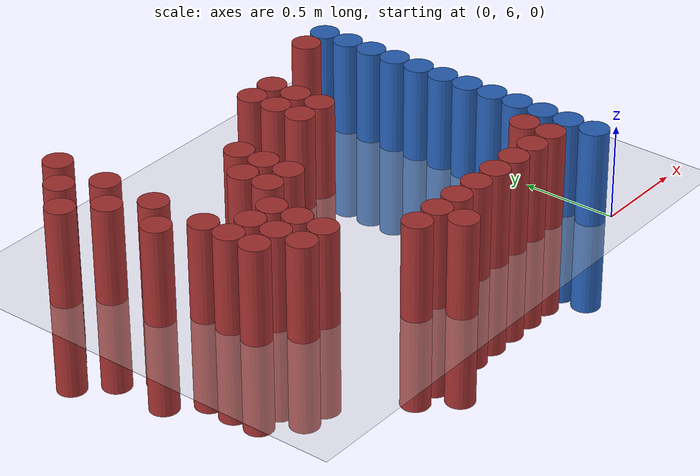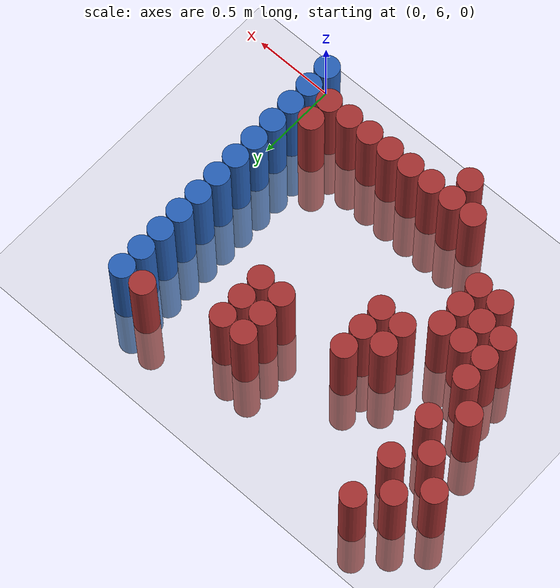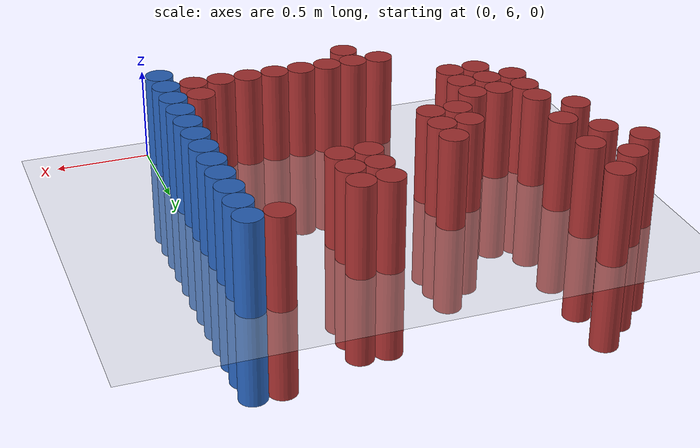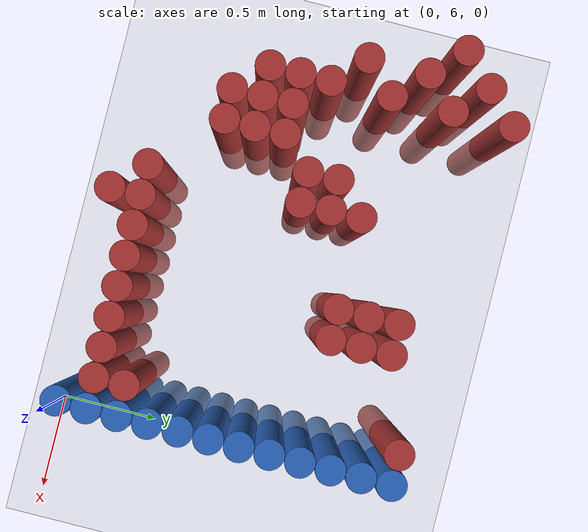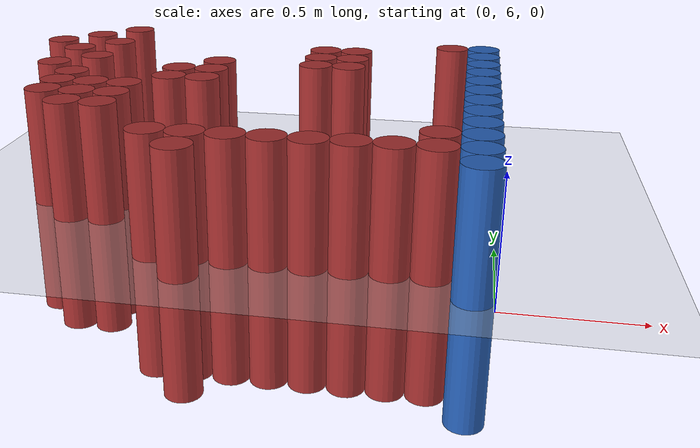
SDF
<sdf version="1.6">
 <world name="default">
  <model name="ground_plane">
   <static>1</static>
   <link name="link">
    <collision name="collision">
     <geometry><plane><normal>0 0 1</normal><size>100 100</size></plane></geometry>
     <surface><friction><ode><mu>100</mu><mu2>50</mu2></ode></friction></surface>
    </collision>
    <visual name="visual">
     <cast_shadows>0</cast_shadows>
     <geometry><plane><normal>0 0 1</normal><size>100 100</size></plane></geometry>
     <material>
      <script><uri>file://media/materials/scripts/gazebo.material</uri><name>Gazebo/Grey</name></script>
     </material>
    </visual>
   </link>
  </model>
  <model name="unit_cylinder_176">
   <static>1</static>
   <pose>-2.175000 7.575000 0.000000 0.000000 0.000000 0.000000</pose>
   <link name="link">
    <inertial>
     <mass>1</mass>
     <inertia><ixx>0.145833</ixx><ixy>0</ixy><ixz>0</ixz><iyy>0.145833</iyy><iyz>0</iyz><izz>0.125</izz></inertia>
    </inertial>
    <collision name="collision">
     <geometry><cylinder><radius>0.075000</radius><length>1</length></cylinder></geometry>
    </collision>
    <visual name="visual">
     <geometry><cylinder><radius>0.075000</radius><length>1</length></cylinder></geometry>
     <material>
      <ambient>0.648000 0.192000 0.192000 1</ambient>
      <diffuse>0.648000 0.192000 0.192000 1</diffuse>
     </material>
     <material>
      <script><name>Gazebo/Grey</name><uri>file://media/materials/scripts/gazebo.material</uri></script>
     </material>
    </visual>
   </link>
  </model>
  <model name="unit_cylinder_178">
   <static>1</static>
   <pose>-2.025000 7.125000 0.000000 0.000000 0.000000 0.000000</pose>
   <link name="link">
    <inertial>
     <mass>1</mass>
     <inertia><ixx>0.145833</ixx><ixy>0</ixy><ixz>0</ixz><iyy>0.145833</iyy><iyz>0</iyz><izz>0.125</izz></inertia>
    </inertial>
    <collision name="collision">
     <geometry><cylinder><radius>0.075000</radius><length>1</length></cylinder></geometry>
    </collision>
    <visual name="visual">
     <geometry><cylinder><radius>0.075000</radius><length>1</length></cylinder></geometry>
     <material>
      <ambient>0.648000 0.192000 0.192000 1</ambient>
      <diffuse>0.648000 0.192000 0.192000 1</diffuse>
     </material>
     <material>
      <script><name>Gazebo/Grey</name><uri>file://media/materials/scripts/gazebo.material</uri></script>
     </material>
    </visual>
   </link>
  </model>
  <model name="unit_cylinder_179">
   <static>1</static>
   <pose>-2.025000 7.425000 0.000000 0.000000 0.000000 0.000000</pose>
   <link name="link">
    <inertial>
     <mass>1</mass>
     <inertia><ixx>0.145833</ixx><ixy>0</ixy><ixz>0</ixz><iyy>0.145833</iyy><iyz>0</iyz><izz>0.125</izz></inertia>
    </inertial>
    <collision name="collision">
     <geometry><cylinder><radius>0.075000</radius><length>1</length></cylinder></geometry>
    </collision>
    <visual name="visual">
     <geometry><cylinder><radius>0.075000</radius><length>1</length></cylinder></geometry>
     <material>
      <ambient>0.648000 0.192000 0.192000 1</ambient>
      <diffuse>0.648000 0.192000 0.192000 1</diffuse>
     </material>
     <material>
      <script><name>Gazebo/Grey</name><uri>file://media/materials/scripts/gazebo.material</uri></script>
     </material>
    </visual>
   </link>
  </model>
  <model name="unit_cylinder_180">
   <static>1</static>
   <pose>-2.025000 7.725000 0.000000 0.000000 0.000000 0.000000</pose>
   <link name="link">
    <inertial>
     <mass>1</mass>
     <inertia><ixx>0.145833</ixx><ixy>0</ixy><ixz>0</ixz><iyy>0.145833</iyy><iyz>0</iyz><izz>0.125</izz></inertia>
    </inertial>
    <collision name="collision">
     <geometry><cylinder><radius>0.075000</radius><length>1</length></cylinder></geometry>
    </collision>
    <visual name="visual">
     <geometry><cylinder><radius>0.075000</radius><length>1</length></cylinder></geometry>
     <material>
      <ambient>0.648000 0.192000 0.192000 1</ambient>
      <diffuse>0.648000 0.192000 0.192000 1</diffuse>
     </material>
     <material>
      <script><name>Gazebo/Grey</name><uri>file://media/materials/scripts/gazebo.material</uri></script>
     </material>
    </visual>
   </link>
  </model>
  <model name="unit_cylinder_182">
   <static>1</static>
   <pose>-1.875000 6.675000 0.000000 0.000000 0.000000 0.000000</pose>
   <link name="link">
    <inertial>
     <mass>1</mass>
     <inertia><ixx>0.145833</ixx><ixy>0</ixy><ixz>0</ixz><iyy>0.145833</iyy><iyz>0</iyz><izz>0.125</izz></inertia>
    </inertial>
    <collision name="collision">
     <geometry><cylinder><radius>0.075000</radius><length>1</length></cylinder></geometry>
    </collision>
    <visual name="visual">
     <geometry><cylinder><radius>0.075000</radius><length>1</length></cylinder></geometry>
     <material>
      <ambient>0.648000 0.192000 0.192000 1</ambient>
      <diffuse>0.648000 0.192000 0.192000 1</diffuse>
     </material>
     <material>
      <script><name>Gazebo/Grey</name><uri>file://media/materials/scripts/gazebo.material</uri></script>
     </material>
    </visual>
   </link>
  </model>
  <model name="unit_cylinder_183">
   <static>1</static>
   <pose>-1.875000 6.825000 0.000000 0.000000 0.000000 0.000000</pose>
   <link name="link">
    <inertial>
     <mass>1</mass>
     <inertia><ixx>0.145833</ixx><ixy>0</ixy><ixz>0</ixz><iyy>0.145833</iyy><iyz>0</iyz><izz>0.125</izz></inertia>
    </inertial>
    <collision name="collision">
     <geometry><cylinder><radius>0.075000</radius><length>1</length></cylinder></geometry>
    </collision>
    <visual name="visual">
     <geometry><cylinder><radius>0.075000</radius><length>1</length></cylinder></geometry>
     <material>
      <ambient>0.648000 0.192000 0.192000 1</ambient>
      <diffuse>0.648000 0.192000 0.192000 1</diffuse>
     </material>
     <material>
      <script><name>Gazebo/Grey</name><uri>file://media/materials/scripts/gazebo.material</uri></script>
     </material>
    </visual>
   </link>
  </model>
  <model name="unit_cylinder_184">
   <static>1</static>
   <pose>-1.875000 6.975000 0.000000 0.000000 0.000000 0.000000</pose>
   <link name="link">
    <inertial>
     <mass>1</mass>
     <inertia><ixx>0.145833</ixx><ixy>0</ixy><ixz>0</ixz><iyy>0.145833</iyy><iyz>0</iyz><izz>0.125</izz></inertia>
    </inertial>
    <collision name="collision">
     <geometry><cylinder><radius>0.075000</radius><length>1</length></cylinder></geometry>
    </collision>
    <visual name="visual">
     <geometry><cylinder><radius>0.075000</radius><length>1</length></cylinder></geometry>
     <material>
      <ambient>0.648000 0.192000 0.192000 1</ambient>
      <diffuse>0.648000 0.192000 0.192000 1</diffuse>
     </material>
     <material>
      <script><name>Gazebo/Grey</name><uri>file://media/materials/scripts/gazebo.material</uri></script>
     </material>
    </visual>
   </link>
  </model>
  <model name="unit_cylinder_185">
   <static>1</static>
   <pose>-1.875000 7.275000 0.000000 0.000000 0.000000 0.000000</pose>
   <link name="link">
    <inertial>
     <mass>1</mass>
     <inertia><ixx>0.145833</ixx><ixy>0</ixy><ixz>0</ixz><iyy>0.145833</iyy><iyz>0</iyz><izz>0.125</izz></inertia>
    </inertial>
    <collision name="collision">
     <geometry><cylinder><radius>0.075000</radius><length>1</length></cylinder></geometry>
    </collision>
    <visual name="visual">
     <geometry><cylinder><radius>0.075000</radius><length>1</length></cylinder></geometry>
     <material>
      <ambient>0.648000 0.192000 0.192000 1</ambient>
      <diffuse>0.648000 0.192000 0.192000 1</diffuse>
     </material>
     <material>
      <script><name>Gazebo/Grey</name><uri>file://media/materials/scripts/gazebo.material</uri></script>
     </material>
    </visual>
   </link>
  </model>
  <model name="unit_cylinder_186">
   <static>1</static>
   <pose>-1.875000 7.575000 0.000000 0.000000 0.000000 0.000000</pose>
   <link name="link">
    <inertial>
     <mass>1</mass>
     <inertia><ixx>0.145833</ixx><ixy>0</ixy><ixz>0</ixz><iyy>0.145833</iyy><iyz>0</iyz><izz>0.125</izz></inertia>
    </inertial>
    <collision name="collision">
     <geometry><cylinder><radius>0.075000</radius><length>1</length></cylinder></geometry>
    </collision>
    <visual name="visual">
     <geometry><cylinder><radius>0.075000</radius><length>1</length></cylinder></geometry>
     <material>
      <ambient>0.648000 0.192000 0.192000 1</ambient>
      <diffuse>0.648000 0.192000 0.192000 1</diffuse>
     </material>
     <material>
      <script><name>Gazebo/Grey</name><uri>file://media/materials/scripts/gazebo.material</uri></script>
     </material>
    </visual>
   </link>
  </model>
  <model name="unit_cylinder_187">
   <static>1</static>
   <pose>-1.875000 7.875000 0.000000 0.000000 0.000000 0.000000</pose>
   <link name="link">
    <inertial>
     <mass>1</mass>
     <inertia><ixx>0.145833</ixx><ixy>0</ixy><ixz>0</ixz><iyy>0.145833</iyy><iyz>0</iyz><izz>0.125</izz></inertia>
    </inertial>
    <collision name="collision">
     <geometry><cylinder><radius>0.075000</radius><length>1</length></cylinder></geometry>
    </collision>
    <visual name="visual">
     <geometry><cylinder><radius>0.075000</radius><length>1</length></cylinder></geometry>
     <material>
      <ambient>0.648000 0.192000 0.192000 1</ambient>
      <diffuse>0.648000 0.192000 0.192000 1</diffuse>
     </material>
     <material>
      <script><name>Gazebo/Grey</name><uri>file://media/materials/scripts/gazebo.material</uri></script>
     </material>
    </visual>
   </link>
  </model>
  <model name="unit_cylinder_192">
   <static>1</static>
   <pose>-1.725000 6.525000 0.000000 0.000000 0.000000 0.000000</pose>
   <link name="link">
    <inertial>
     <mass>1</mass>
     <inertia><ixx>0.145833</ixx><ixy>0</ixy><ixz>0</ixz><iyy>0.145833</iyy><iyz>0</iyz><izz>0.125</izz></inertia>
    </inertial>
    <collision name="collision">
     <geometry><cylinder><radius>0.075000</radius><length>1</length></cylinder></geometry>
    </collision>
    <visual name="visual">
     <geometry><cylinder><radius>0.075000</radius><length>1</length></cylinder></geometry>
     <material>
      <ambient>0.648000 0.192000 0.192000 1</ambient>
      <diffuse>0.648000 0.192000 0.192000 1</diffuse>
     </material>
     <material>
      <script><name>Gazebo/Grey</name><uri>file://media/materials/scripts/gazebo.material</uri></script>
     </material>
    </visual>
   </link>
  </model>
  <model name="unit_cylinder_193">
   <static>1</static>
   <pose>-1.725000 6.675000 0.000000 0.000000 0.000000 0.000000</pose>
   <link name="link">
    <inertial>
     <mass>1</mass>
     <inertia><ixx>0.145833</ixx><ixy>0</ixy><ixz>0</ixz><iyy>0.145833</iyy><iyz>0</iyz><izz>0.125</izz></inertia>
    </inertial>
    <collision name="collision">
     <geometry><cylinder><radius>0.075000</radius><length>1</length></cylinder></geometry>
    </collision>
    <visual name="visual">
     <geometry><cylinder><radius>0.075000</radius><length>1</length></cylinder></geometry>
     <material>
      <ambient>0.648000 0.192000 0.192000 1</ambient>
      <diffuse>0.648000 0.192000 0.192000 1</diffuse>
     </material>
     <material>
      <script><name>Gazebo/Grey</name><uri>file://media/materials/scripts/gazebo.material</uri></script>
     </material>
    </visual>
   </link>
  </model>
  <model name="unit_cylinder_194">
   <static>1</static>
   <pose>-1.725000 6.825000 0.000000 0.000000 0.000000 0.000000</pose>
   <link name="link">
    <inertial>
     <mass>1</mass>
     <inertia><ixx>0.145833</ixx><ixy>0</ixy><ixz>0</ixz><iyy>0.145833</iyy><iyz>0</iyz><izz>0.125</izz></inertia>
    </inertial>
    <collision name="collision">
     <geometry><cylinder><radius>0.075000</radius><length>1</length></cylinder></geometry>
    </collision>
    <visual name="visual">
     <geometry><cylinder><radius>0.075000</radius><length>1</length></cylinder></geometry>
     <material>
      <ambient>0.648000 0.192000 0.192000 1</ambient>
      <diffuse>0.648000 0.192000 0.192000 1</diffuse>
     </material>
     <material>
      <script><name>Gazebo/Grey</name><uri>file://media/materials/scripts/gazebo.material</uri></script>
     </material>
    </visual>
   </link>
  </model>
  <model name="unit_cylinder_201">
   <static>1</static>
   <pose>-1.575000 6.525000 0.000000 0.000000 0.000000 0.000000</pose>
   <link name="link">
    <inertial>
     <mass>1</mass>
     <inertia><ixx>0.145833</ixx><ixy>0</ixy><ixz>0</ixz><iyy>0.145833</iyy><iyz>0</iyz><izz>0.125</izz></inertia>
    </inertial>
    <collision name="collision">
     <geometry><cylinder><radius>0.075000</radius><length>1</length></cylinder></geometry>
    </collision>
    <visual name="visual">
     <geometry><cylinder><radius>0.075000</radius><length>1</length></cylinder></geometry>
     <material>
      <ambient>0.648000 0.192000 0.192000 1</ambient>
      <diffuse>0.648000 0.192000 0.192000 1</diffuse>
     </material>
     <material>
      <script><name>Gazebo/Grey</name><uri>file://media/materials/scripts/gazebo.material</uri></script>
     </material>
    </visual>
   </link>
  </model>
  <model name="unit_cylinder_202">
   <static>1</static>
   <pose>-1.575000 6.675000 0.000000 0.000000 0.000000 0.000000</pose>
   <link name="link">
    <inertial>
     <mass>1</mass>
     <inertia><ixx>0.145833</ixx><ixy>0</ixy><ixz>0</ixz><iyy>0.145833</iyy><iyz>0</iyz><izz>0.125</izz></inertia>
    </inertial>
    <collision name="collision">
     <geometry><cylinder><radius>0.075000</radius><length>1</length></cylinder></geometry>
    </collision>
    <visual name="visual">
     <geometry><cylinder><radius>0.075000</radius><length>1</length></cylinder></geometry>
     <material>
      <ambient>0.648000 0.192000 0.192000 1</ambient>
      <diffuse>0.648000 0.192000 0.192000 1</diffuse>
     </material>
     <material>
      <script><name>Gazebo/Grey</name><uri>file://media/materials/scripts/gazebo.material</uri></script>
     </material>
    </visual>
   </link>
  </model>
  <model name="unit_cylinder_203">
   <static>1</static>
   <pose>-1.575000 6.825000 0.000000 0.000000 0.000000 0.000000</pose>
   <link name="link">
    <inertial>
     <mass>1</mass>
     <inertia><ixx>0.145833</ixx><ixy>0</ixy><ixz>0</ixz><iyy>0.145833</iyy><iyz>0</iyz><izz>0.125</izz></inertia>
    </inertial>
    <collision name="collision">
     <geometry><cylinder><radius>0.075000</radius><length>1</length></cylinder></geometry>
    </collision>
    <visual name="visual">
     <geometry><cylinder><radius>0.075000</radius><length>1</length></cylinder></geometry>
     <material>
      <ambient>0.648000 0.192000 0.192000 1</ambient>
      <diffuse>0.648000 0.192000 0.192000 1</diffuse>
     </material>
     <material>
      <script><name>Gazebo/Grey</name><uri>file://media/materials/scripts/gazebo.material</uri></script>
     </material>
    </visual>
   </link>
  </model>
  <model name="unit_cylinder_206">
   <static>1</static>
   <pose>-1.425000 6.975000 0.000000 0.000000 0.000000 0.000000</pose>
   <link name="link">
    <inertial>
     <mass>1</mass>
     <inertia><ixx>0.145833</ixx><ixy>0</ixy><ixz>0</ixz><iyy>0.145833</iyy><iyz>0</iyz><izz>0.125</izz></inertia>
    </inertial>
    <collision name="collision">
     <geometry><cylinder><radius>0.075000</radius><length>1</length></cylinder></geometry>
    </collision>
    <visual name="visual">
     <geometry><cylinder><radius>0.075000</radius><length>1</length></cylinder></geometry>
     <material>
      <ambient>0.648000 0.192000 0.192000 1</ambient>
      <diffuse>0.648000 0.192000 0.192000 1</diffuse>
     </material>
     <material>
      <script><name>Gazebo/Grey</name><uri>file://media/materials/scripts/gazebo.material</uri></script>
     </material>
    </visual>
   </link>
  </model>
  <model name="unit_cylinder_207">
   <static>1</static>
   <pose>-1.425000 7.125000 0.000000 0.000000 0.000000 0.000000</pose>
   <link name="link">
    <inertial>
     <mass>1</mass>
     <inertia><ixx>0.145833</ixx><ixy>0</ixy><ixz>0</ixz><iyy>0.145833</iyy><iyz>0</iyz><izz>0.125</izz></inertia>
    </inertial>
    <collision name="collision">
     <geometry><cylinder><radius>0.075000</radius><length>1</length></cylinder></geometry>
    </collision>
    <visual name="visual">
     <geometry><cylinder><radius>0.075000</radius><length>1</length></cylinder></geometry>
     <material>
      <ambient>0.648000 0.192000 0.192000 1</ambient>
      <diffuse>0.648000 0.192000 0.192000 1</diffuse>
     </material>
     <material>
      <script><name>Gazebo/Grey</name><uri>file://media/materials/scripts/gazebo.material</uri></script>
     </material>
    </visual>
   </link>
  </model>
  <model name="unit_cylinder_210">
   <static>1</static>
   <pose>-1.275000 6.225000 0.000000 0.000000 0.000000 0.000000</pose>
   <link name="link">
    <inertial>
     <mass>1</mass>
     <inertia><ixx>0.145833</ixx><ixy>0</ixy><ixz>0</ixz><iyy>0.145833</iyy><iyz>0</iyz><izz>0.125</izz></inertia>
    </inertial>
    <collision name="collision">
     <geometry><cylinder><radius>0.075000</radius><length>1</length></cylinder></geometry>
    </collision>
    <visual name="visual">
     <geometry><cylinder><radius>0.075000</radius><length>1</length></cylinder></geometry>
     <material>
      <ambient>0.648000 0.192000 0.192000 1</ambient>
      <diffuse>0.648000 0.192000 0.192000 1</diffuse>
     </material>
     <material>
      <script><name>Gazebo/Grey</name><uri>file://media/materials/scripts/gazebo.material</uri></script>
     </material>
    </visual>
   </link>
  </model>
  <model name="unit_cylinder_211">
   <static>1</static>
   <pose>-1.275000 6.975000 0.000000 0.000000 0.000000 0.000000</pose>
   <link name="link">
    <inertial>
     <mass>1</mass>
     <inertia><ixx>0.145833</ixx><ixy>0</ixy><ixz>0</ixz><iyy>0.145833</iyy><iyz>0</iyz><izz>0.125</izz></inertia>
    </inertial>
    <collision name="collision">
     <geometry><cylinder><radius>0.075000</radius><length>1</length></cylinder></geometry>
    </collision>
    <visual name="visual">
     <geometry><cylinder><radius>0.075000</radius><length>1</length></cylinder></geometry>
     <material>
      <ambient>0.648000 0.192000 0.192000 1</ambient>
      <diffuse>0.648000 0.192000 0.192000 1</diffuse>
     </material>
     <material>
      <script><name>Gazebo/Grey</name><uri>file://media/materials/scripts/gazebo.material</uri></script>
     </material>
    </visual>
   </link>
  </model>
  <model name="unit_cylinder_212">
   <static>1</static>
   <pose>-1.275000 7.125000 0.000000 0.000000 0.000000 0.000000</pose>
   <link name="link">
    <inertial>
     <mass>1</mass>
     <inertia><ixx>0.145833</ixx><ixy>0</ixy><ixz>0</ixz><iyy>0.145833</iyy><iyz>0</iyz><izz>0.125</izz></inertia>
    </inertial>
    <collision name="collision">
     <geometry><cylinder><radius>0.075000</radius><length>1</length></cylinder></geometry>
    </collision>
    <visual name="visual">
     <geometry><cylinder><radius>0.075000</radius><length>1</length></cylinder></geometry>
     <material>
      <ambient>0.648000 0.192000 0.192000 1</ambient>
      <diffuse>0.648000 0.192000 0.192000 1</diffuse>
     </material>
     <material>
      <script><name>Gazebo/Grey</name><uri>file://media/materials/scripts/gazebo.material</uri></script>
     </material>
    </visual>
   </link>
  </model>
  <model name="unit_cylinder_213">
   <static>1</static>
   <pose>-1.275000 7.275000 0.000000 0.000000 0.000000 0.000000</pose>
   <link name="link">
    <inertial>
     <mass>1</mass>
     <inertia><ixx>0.145833</ixx><ixy>0</ixy><ixz>0</ixz><iyy>0.145833</iyy><iyz>0</iyz><izz>0.125</izz></inertia>
    </inertial>
    <collision name="collision">
     <geometry><cylinder><radius>0.075000</radius><length>1</length></cylinder></geometry>
    </collision>
    <visual name="visual">
     <geometry><cylinder><radius>0.075000</radius><length>1</length></cylinder></geometry>
     <material>
      <ambient>0.648000 0.192000 0.192000 1</ambient>
      <diffuse>0.648000 0.192000 0.192000 1</diffuse>
     </material>
     <material>
      <script><name>Gazebo/Grey</name><uri>file://media/materials/scripts/gazebo.material</uri></script>
     </material>
    </visual>
   </link>
  </model>
  <model name="unit_cylinder_218">
   <static>1</static>
   <pose>-1.125000 6.075000 0.000000 0.000000 0.000000 0.000000</pose>
   <link name="link">
    <inertial>
     <mass>1</mass>
     <inertia><ixx>0.145833</ixx><ixy>0</ixy><ixz>0</ixz><iyy>0.145833</iyy><iyz>0</iyz><izz>0.125</izz></inertia>
    </inertial>
    <collision name="collision">
     <geometry><cylinder><radius>0.075000</radius><length>1</length></cylinder></geometry>
    </collision>
    <visual name="visual">
     <geometry><cylinder><radius>0.075000</radius><length>1</length></cylinder></geometry>
     <material>
      <ambient>0.648000 0.192000 0.192000 1</ambient>
      <diffuse>0.648000 0.192000 0.192000 1</diffuse>
     </material>
     <material>
      <script><name>Gazebo/Grey</name><uri>file://media/materials/scripts/gazebo.material</uri></script>
     </material>
    </visual>
   </link>
  </model>
  <model name="unit_cylinder_219">
   <static>1</static>
   <pose>-1.125000 6.225000 0.000000 0.000000 0.000000 0.000000</pose>
   <link name="link">
    <inertial>
     <mass>1</mass>
     <inertia><ixx>0.145833</ixx><ixy>0</ixy><ixz>0</ixz><iyy>0.145833</iyy><iyz>0</iyz><izz>0.125</izz></inertia>
    </inertial>
    <collision name="collision">
     <geometry><cylinder><radius>0.075000</radius><length>1</length></cylinder></geometry>
    </collision>
    <visual name="visual">
     <geometry><cylinder><radius>0.075000</radius><length>1</length></cylinder></geometry>
     <material>
      <ambient>0.648000 0.192000 0.192000 1</ambient>
      <diffuse>0.648000 0.192000 0.192000 1</diffuse>
     </material>
     <material>
      <script><name>Gazebo/Grey</name><uri>file://media/materials/scripts/gazebo.material</uri></script>
     </material>
    </visual>
   </link>
  </model>
  <model name="unit_cylinder_225">
   <static>1</static>
   <pose>-0.975000 6.225000 0.000000 0.000000 0.000000 0.000000</pose>
   <link name="link">
    <inertial>
     <mass>1</mass>
     <inertia><ixx>0.145833</ixx><ixy>0</ixy><ixz>0</ixz><iyy>0.145833</iyy><iyz>0</iyz><izz>0.125</izz></inertia>
    </inertial>
    <collision name="collision">
     <geometry><cylinder><radius>0.075000</radius><length>1</length></cylinder></geometry>
    </collision>
    <visual name="visual">
     <geometry><cylinder><radius>0.075000</radius><length>1</length></cylinder></geometry>
     <material>
      <ambient>0.648000 0.192000 0.192000 1</ambient>
      <diffuse>0.648000 0.192000 0.192000 1</diffuse>
     </material>
     <material>
      <script><name>Gazebo/Grey</name><uri>file://media/materials/scripts/gazebo.material</uri></script>
     </material>
    </visual>
   </link>
  </model>
  <model name="unit_cylinder_230">
   <static>1</static>
   <pose>-0.825000 6.225000 0.000000 0.000000 0.000000 0.000000</pose>
   <link name="link">
    <inertial>
     <mass>1</mass>
     <inertia><ixx>0.145833</ixx><ixy>0</ixy><ixz>0</ixz><iyy>0.145833</iyy><iyz>0</iyz><izz>0.125</izz></inertia>
    </inertial>
    <collision name="collision">
     <geometry><cylinder><radius>0.075000</radius><length>1</length></cylinder></geometry>
    </collision>
    <visual name="visual">
     <geometry><cylinder><radius>0.075000</radius><length>1</length></cylinder></geometry>
     <material>
      <ambient>0.648000 0.192000 0.192000 1</ambient>
      <diffuse>0.648000 0.192000 0.192000 1</diffuse>
     </material>
     <material>
      <script><name>Gazebo/Grey</name><uri>file://media/materials/scripts/gazebo.material</uri></script>
     </material>
    </visual>
   </link>
  </model>
  <model name="unit_cylinder_231">
   <static>1</static>
   <pose>-0.825000 7.275000 0.000000 0.000000 0.000000 0.000000</pose>
   <link name="link">
    <inertial>
     <mass>1</mass>
     <inertia><ixx>0.145833</ixx><ixy>0</ixy><ixz>0</ixz><iyy>0.145833</iyy><iyz>0</iyz><izz>0.125</izz></inertia>
    </inertial>
    <collision name="collision">
     <geometry><cylinder><radius>0.075000</radius><length>1</length></cylinder></geometry>
    </collision>
    <visual name="visual">
     <geometry><cylinder><radius>0.075000</radius><length>1</length></cylinder></geometry>
     <material>
      <ambient>0.648000 0.192000 0.192000 1</ambient>
      <diffuse>0.648000 0.192000 0.192000 1</diffuse>
     </material>
     <material>
      <script><name>Gazebo/Grey</name><uri>file://media/materials/scripts/gazebo.material</uri></script>
     </material>
    </visual>
   </link>
  </model>
  <model name="unit_cylinder_232">
   <static>1</static>
   <pose>-0.825000 7.425000 0.000000 0.000000 0.000000 0.000000</pose>
   <link name="link">
    <inertial>
     <mass>1</mass>
     <inertia><ixx>0.145833</ixx><ixy>0</ixy><ixz>0</ixz><iyy>0.145833</iyy><iyz>0</iyz><izz>0.125</izz></inertia>
    </inertial>
    <collision name="collision">
     <geometry><cylinder><radius>0.075000</radius><length>1</length></cylinder></geometry>
    </collision>
    <visual name="visual">
     <geometry><cylinder><radius>0.075000</radius><length>1</length></cylinder></geometry>
     <material>
      <ambient>0.648000 0.192000 0.192000 1</ambient>
      <diffuse>0.648000 0.192000 0.192000 1</diffuse>
     </material>
     <material>
      <script><name>Gazebo/Grey</name><uri>file://media/materials/scripts/gazebo.material</uri></script>
     </material>
    </visual>
   </link>
  </model>
  <model name="unit_cylinder_233">
   <static>1</static>
   <pose>-0.825000 7.575000 0.000000 0.000000 0.000000 0.000000</pose>
   <link name="link">
    <inertial>
     <mass>1</mass>
     <inertia><ixx>0.145833</ixx><ixy>0</ixy><ixz>0</ixz><iyy>0.145833</iyy><iyz>0</iyz><izz>0.125</izz></inertia>
    </inertial>
    <collision name="collision">
     <geometry><cylinder><radius>0.075000</radius><length>1</length></cylinder></geometry>
    </collision>
    <visual name="visual">
     <geometry><cylinder><radius>0.075000</radius><length>1</length></cylinder></geometry>
     <material>
      <ambient>0.648000 0.192000 0.192000 1</ambient>
      <diffuse>0.648000 0.192000 0.192000 1</diffuse>
     </material>
     <material>
      <script><name>Gazebo/Grey</name><uri>file://media/materials/scripts/gazebo.material</uri></script>
     </material>
    </visual>
   </link>
  </model>
  <model name="unit_cylinder_238">
   <static>1</static>
   <pose>-0.675000 6.225000 0.000000 0.000000 0.000000 0.000000</pose>
   <link name="link">
    <inertial>
     <mass>1</mass>
     <inertia><ixx>0.145833</ixx><ixy>0</ixy><ixz>0</ixz><iyy>0.145833</iyy><iyz>0</iyz><izz>0.125</izz></inertia>
    </inertial>
    <collision name="collision">
     <geometry><cylinder><radius>0.075000</radius><length>1</length></cylinder></geometry>
    </collision>
    <visual name="visual">
     <geometry><cylinder><radius>0.075000</radius><length>1</length></cylinder></geometry>
     <material>
      <ambient>0.648000 0.192000 0.192000 1</ambient>
      <diffuse>0.648000 0.192000 0.192000 1</diffuse>
     </material>
     <material>
      <script><name>Gazebo/Grey</name><uri>file://media/materials/scripts/gazebo.material</uri></script>
     </material>
    </visual>
   </link>
  </model>
  <model name="unit_cylinder_239">
   <static>1</static>
   <pose>-0.675000 7.275000 0.000000 0.000000 0.000000 0.000000</pose>
   <link name="link">
    <inertial>
     <mass>1</mass>
     <inertia><ixx>0.145833</ixx><ixy>0</ixy><ixz>0</ixz><iyy>0.145833</iyy><iyz>0</iyz><izz>0.125</izz></inertia>
    </inertial>
    <collision name="collision">
     <geometry><cylinder><radius>0.075000</radius><length>1</length></cylinder></geometry>
    </collision>
    <visual name="visual">
     <geometry><cylinder><radius>0.075000</radius><length>1</length></cylinder></geometry>
     <material>
      <ambient>0.648000 0.192000 0.192000 1</ambient>
      <diffuse>0.648000 0.192000 0.192000 1</diffuse>
     </material>
     <material>
      <script><name>Gazebo/Grey</name><uri>file://media/materials/scripts/gazebo.material</uri></script>
     </material>
    </visual>
   </link>
  </model>
  <model name="unit_cylinder_240">
   <static>1</static>
   <pose>-0.675000 7.425000 0.000000 0.000000 0.000000 0.000000</pose>
   <link name="link">
    <inertial>
     <mass>1</mass>
     <inertia><ixx>0.145833</ixx><ixy>0</ixy><ixz>0</ixz><iyy>0.145833</iyy><iyz>0</iyz><izz>0.125</izz></inertia>
    </inertial>
    <collision name="collision">
     <geometry><cylinder><radius>0.075000</radius><length>1</length></cylinder></geometry>
    </collision>
    <visual name="visual">
     <geometry><cylinder><radius>0.075000</radius><length>1</length></cylinder></geometry>
     <material>
      <ambient>0.648000 0.192000 0.192000 1</ambient>
      <diffuse>0.648000 0.192000 0.192000 1</diffuse>
     </material>
     <material>
      <script><name>Gazebo/Grey</name><uri>file://media/materials/scripts/gazebo.material</uri></script>
     </material>
    </visual>
   </link>
  </model>
  <model name="unit_cylinder_241">
   <static>1</static>
   <pose>-0.675000 7.575000 0.000000 0.000000 0.000000 0.000000</pose>
   <link name="link">
    <inertial>
     <mass>1</mass>
     <inertia><ixx>0.145833</ixx><ixy>0</ixy><ixz>0</ixz><iyy>0.145833</iyy><iyz>0</iyz><izz>0.125</izz></inertia>
    </inertial>
    <collision name="collision">
     <geometry><cylinder><radius>0.075000</radius><length>1</length></cylinder></geometry>
    </collision>
    <visual name="visual">
     <geometry><cylinder><radius>0.075000</radius><length>1</length></cylinder></geometry>
     <material>
      <ambient>0.648000 0.192000 0.192000 1</ambient>
      <diffuse>0.648000 0.192000 0.192000 1</diffuse>
     </material>
     <material>
      <script><name>Gazebo/Grey</name><uri>file://media/materials/scripts/gazebo.material</uri></script>
     </material>
    </visual>
   </link>
  </model>
  <model name="unit_cylinder_247">
   <static>1</static>
   <pose>-0.525000 6.225000 0.000000 0.000000 0.000000 0.000000</pose>
   <link name="link">
    <inertial>
     <mass>1</mass>
     <inertia><ixx>0.145833</ixx><ixy>0</ixy><ixz>0</ixz><iyy>0.145833</iyy><iyz>0</iyz><izz>0.125</izz></inertia>
    </inertial>
    <collision name="collision">
     <geometry><cylinder><radius>0.075000</radius><length>1</length></cylinder></geometry>
    </collision>
    <visual name="visual">
     <geometry><cylinder><radius>0.075000</radius><length>1</length></cylinder></geometry>
     <material>
      <ambient>0.648000 0.192000 0.192000 1</ambient>
      <diffuse>0.648000 0.192000 0.192000 1</diffuse>
     </material>
     <material>
      <script><name>Gazebo/Grey</name><uri>file://media/materials/scripts/gazebo.material</uri></script>
     </material>
    </visual>
   </link>
  </model>
  <model name="unit_cylinder_255">
   <static>1</static>
   <pose>-0.375000 6.225000 0.000000 0.000000 0.000000 0.000000</pose>
   <link name="link">
    <inertial>
     <mass>1</mass>
     <inertia><ixx>0.145833</ixx><ixy>0</ixy><ixz>0</ixz><iyy>0.145833</iyy><iyz>0</iyz><izz>0.125</izz></inertia>
    </inertial>
    <collision name="collision">
     <geometry><cylinder><radius>0.075000</radius><length>1</length></cylinder></geometry>
    </collision>
    <visual name="visual">
     <geometry><cylinder><radius>0.075000</radius><length>1</length></cylinder></geometry>
     <material>
      <ambient>0.648000 0.192000 0.192000 1</ambient>
      <diffuse>0.648000 0.192000 0.192000 1</diffuse>
     </material>
     <material>
      <script><name>Gazebo/Grey</name><uri>file://media/materials/scripts/gazebo.material</uri></script>
     </material>
    </visual>
   </link>
  </model>
  <model name="unit_cylinder_264">
   <static>1</static>
   <pose>-0.225000 6.225000 0.000000 0.000000 0.000000 0.000000</pose>
   <link name="link">
    <inertial>
     <mass>1</mass>
     <inertia><ixx>0.145833</ixx><ixy>0</ixy><ixz>0</ixz><iyy>0.145833</iyy><iyz>0</iyz><izz>0.125</izz></inertia>
    </inertial>
    <collision name="collision">
     <geometry><cylinder><radius>0.075000</radius><length>1</length></cylinder></geometry>
    </collision>
    <visual name="visual">
     <geometry><cylinder><radius>0.075000</radius><length>1</length></cylinder></geometry>
     <material>
      <ambient>0.648000 0.192000 0.192000 1</ambient>
      <diffuse>0.648000 0.192000 0.192000 1</diffuse>
     </material>
     <material>
      <script><name>Gazebo/Grey</name><uri>file://media/materials/scripts/gazebo.material</uri></script>
     </material>
    </visual>
   </link>
  </model>
  <model name="unit_cylinder_265">
   <static>1</static>
   <pose>-0.225000 6.375000 0.000000 0.000000 0.000000 0.000000</pose>
   <link name="link">
    <inertial>
     <mass>1</mass>
     <inertia><ixx>0.145833</ixx><ixy>0</ixy><ixz>0</ixz><iyy>0.145833</iyy><iyz>0</iyz><izz>0.125</izz></inertia>
    </inertial>
    <collision name="collision">
     <geometry><cylinder><radius>0.075000</radius><length>1</length></cylinder></geometry>
    </collision>
    <visual name="visual">
     <geometry><cylinder><radius>0.075000</radius><length>1</length></cylinder></geometry>
     <material>
      <ambient>0.648000 0.192000 0.192000 1</ambient>
      <diffuse>0.648000 0.192000 0.192000 1</diffuse>
     </material>
     <material>
      <script><name>Gazebo/Grey</name><uri>file://media/materials/scripts/gazebo.material</uri></script>
     </material>
    </visual>
   </link>
  </model>
  <model name="unit_cylinder_266">
   <static>1</static>
   <pose>-0.225000 7.725000 0.000000 0.000000 0.000000 0.000000</pose>
   <link name="link">
    <inertial>
     <mass>1</mass>
     <inertia><ixx>0.145833</ixx><ixy>0</ixy><ixz>0</ixz><iyy>0.145833</iyy><iyz>0</iyz><izz>0.125</izz></inertia>
    </inertial>
    <collision name="collision">
     <geometry><cylinder><radius>0.075000</radius><length>1</length></cylinder></geometry>
    </collision>
    <visual name="visual">
     <geometry><cylinder><radius>0.075000</radius><length>1</length></cylinder></geometry>
     <material>
      <ambient>0.648000 0.192000 0.192000 1</ambient>
      <diffuse>0.648000 0.192000 0.192000 1</diffuse>
     </material>
     <material>
      <script><name>Gazebo/Grey</name><uri>file://media/materials/scripts/gazebo.material</uri></script>
     </material>
    </visual>
   </link>
  </model>
  <model name="unit_cylinder_277">
   <static>1</static>
   <pose>-0.075000 6.075000 0.000000 0.000000 0.000000 0.000000</pose>
   <link name="link">
    <inertial>
     <mass>1</mass>
     <inertia><ixx>0.145833</ixx><ixy>0</ixy><ixz>0</ixz><iyy>0.145833</iyy><iyz>0</iyz><izz>0.125</izz></inertia>
    </inertial>
    <collision name="collision">
     <geometry><cylinder><radius>0.075000</radius><length>1</length></cylinder></geometry>
    </collision>
    <visual name="visual">
     <geometry><cylinder><radius>0.075000</radius><length>1</length></cylinder></geometry>
     <material>
      <ambient>0.152000 0.379000 0.720000 1</ambient>
      <diffuse>0.152000 0.379000 0.720000 1</diffuse>
     </material>
     <material>
      <script><name>Gazebo/Grey</name><uri>file://media/materials/scripts/gazebo.material</uri></script>
     </material>
    </visual>
   </link>
  </model>
  <model name="unit_cylinder_278">
   <static>1</static>
   <pose>-0.075000 6.225000 0.000000 0.000000 0.000000 0.000000</pose>
   <link name="link">
    <inertial>
     <mass>1</mass>
     <inertia><ixx>0.145833</ixx><ixy>0</ixy><ixz>0</ixz><iyy>0.145833</iyy><iyz>0</iyz><izz>0.125</izz></inertia>
    </inertial>
    <collision name="collision">
     <geometry><cylinder><radius>0.075000</radius><length>1</length></cylinder></geometry>
    </collision>
    <visual name="visual">
     <geometry><cylinder><radius>0.075000</radius><length>1</length></cylinder></geometry>
     <material>
      <ambient>0.152000 0.379000 0.720000 1</ambient>
      <diffuse>0.152000 0.379000 0.720000 1</diffuse>
     </material>
     <material>
      <script><name>Gazebo/Grey</name><uri>file://media/materials/scripts/gazebo.material</uri></script>
     </material>
    </visual>
   </link>
  </model>
  <model name="unit_cylinder_279">
   <static>1</static>
   <pose>-0.075000 6.375000 0.000000 0.000000 0.000000 0.000000</pose>
   <link name="link">
    <inertial>
     <mass>1</mass>
     <inertia><ixx>0.145833</ixx><ixy>0</ixy><ixz>0</ixz><iyy>0.145833</iyy><iyz>0</iyz><izz>0.125</izz></inertia>
    </inertial>
    <collision name="collision">
     <geometry><cylinder><radius>0.075000</radius><length>1</length></cylinder></geometry>
    </collision>
    <visual name="visual">
     <geometry><cylinder><radius>0.075000</radius><length>1</length></cylinder></geometry>
     <material>
      <ambient>0.152000 0.379000 0.720000 1</ambient>
      <diffuse>0.152000 0.379000 0.720000 1</diffuse>
     </material>
     <material>
      <script><name>Gazebo/Grey</name><uri>file://media/materials/scripts/gazebo.material</uri></script>
     </material>
    </visual>
   </link>
  </model>
  <model name="unit_cylinder_280">
   <static>1</static>
   <pose>-0.075000 6.525000 0.000000 0.000000 0.000000 0.000000</pose>
   <link name="link">
    <inertial>
     <mass>1</mass>
     <inertia><ixx>0.145833</ixx><ixy>0</ixy><ixz>0</ixz><iyy>0.145833</iyy><iyz>0</iyz><izz>0.125</izz></inertia>
    </inertial>
    <collision name="collision">
     <geometry><cylinder><radius>0.075000</radius><length>1</length></cylinder></geometry>
    </collision>
    <visual name="visual">
     <geometry><cylinder><radius>0.075000</radius><length>1</length></cylinder></geometry>
     <material>
      <ambient>0.152000 0.379000 0.720000 1</ambient>
      <diffuse>0.152000 0.379000 0.720000 1</diffuse>
     </material>
     <material>
      <script><name>Gazebo/Grey</name><uri>file://media/materials/scripts/gazebo.material</uri></script>
     </material>
    </visual>
   </link>
  </model>
  <model name="unit_cylinder_281">
   <static>1</static>
   <pose>-0.075000 6.675000 0.000000 0.000000 0.000000 0.000000</pose>
   <link name="link">
    <inertial>
     <mass>1</mass>
     <inertia><ixx>0.145833</ixx><ixy>0</ixy><ixz>0</ixz><iyy>0.145833</iyy><iyz>0</iyz><izz>0.125</izz></inertia>
    </inertial>
    <collision name="collision">
     <geometry><cylinder><radius>0.075000</radius><length>1</length></cylinder></geometry>
    </collision>
    <visual name="visual">
     <geometry><cylinder><radius>0.075000</radius><length>1</length></cylinder></geometry>
     <material>
      <ambient>0.152000 0.379000 0.720000 1</ambient>
      <diffuse>0.152000 0.379000 0.720000 1</diffuse>
     </material>
     <material>
      <script><name>Gazebo/Grey</name><uri>file://media/materials/scripts/gazebo.material</uri></script>
     </material>
    </visual>
   </link>
  </model>
  <model name="unit_cylinder_282">
   <static>1</static>
   <pose>-0.075000 6.825000 0.000000 0.000000 0.000000 0.000000</pose>
   <link name="link">
    <inertial>
     <mass>1</mass>
     <inertia><ixx>0.145833</ixx><ixy>0</ixy><ixz>0</ixz><iyy>0.145833</iyy><iyz>0</iyz><izz>0.125</izz></inertia>
    </inertial>
    <collision name="collision">
     <geometry><cylinder><radius>0.075000</radius><length>1</length></cylinder></geometry>
    </collision>
    <visual name="visual">
     <geometry><cylinder><radius>0.075000</radius><length>1</length></cylinder></geometry>
     <material>
      <ambient>0.152000 0.379000 0.720000 1</ambient>
      <diffuse>0.152000 0.379000 0.720000 1</diffuse>
     </material>
     <material>
      <script><name>Gazebo/Grey</name><uri>file://media/materials/scripts/gazebo.material</uri></script>
     </material>
    </visual>
   </link>
  </model>
  <model name="unit_cylinder_283">
   <static>1</static>
   <pose>-0.075000 6.975000 0.000000 0.000000 0.000000 0.000000</pose>
   <link name="link">
    <inertial>
     <mass>1</mass>
     <inertia><ixx>0.145833</ixx><ixy>0</ixy><ixz>0</ixz><iyy>0.145833</iyy><iyz>0</iyz><izz>0.125</izz></inertia>
    </inertial>
    <collision name="collision">
     <geometry><cylinder><radius>0.075000</radius><length>1</length></cylinder></geometry>
    </collision>
    <visual name="visual">
     <geometry><cylinder><radius>0.075000</radius><length>1</length></cylinder></geometry>
     <material>
      <ambient>0.152000 0.379000 0.720000 1</ambient>
      <diffuse>0.152000 0.379000 0.720000 1</diffuse>
     </material>
     <material>
      <script><name>Gazebo/Grey</name><uri>file://media/materials/scripts/gazebo.material</uri></script>
     </material>
    </visual>
   </link>
  </model>
  <model name="unit_cylinder_284">
   <static>1</static>
   <pose>-0.075000 7.125000 0.000000 0.000000 0.000000 0.000000</pose>
   <link name="link">
    <inertial>
     <mass>1</mass>
     <inertia><ixx>0.145833</ixx><ixy>0</ixy><ixz>0</ixz><iyy>0.145833</iyy><iyz>0</iyz><izz>0.125</izz></inertia>
    </inertial>
    <collision name="collision">
     <geometry><cylinder><radius>0.075000</radius><length>1</length></cylinder></geometry>
    </collision>
    <visual name="visual">
     <geometry><cylinder><radius>0.075000</radius><length>1</length></cylinder></geometry>
     <material>
      <ambient>0.152000 0.379000 0.720000 1</ambient>
      <diffuse>0.152000 0.379000 0.720000 1</diffuse>
     </material>
     <material>
      <script><name>Gazebo/Grey</name><uri>file://media/materials/scripts/gazebo.material</uri></script>
     </material>
    </visual>
   </link>
  </model>
  <model name="unit_cylinder_285">
   <static>1</static>
   <pose>-0.075000 7.275000 0.000000 0.000000 0.000000 0.000000</pose>
   <link name="link">
    <inertial>
     <mass>1</mass>
     <inertia><ixx>0.145833</ixx><ixy>0</ixy><ixz>0</ixz><iyy>0.145833</iyy><iyz>0</iyz><izz>0.125</izz></inertia>
    </inertial>
    <collision name="collision">
     <geometry><cylinder><radius>0.075000</radius><length>1</length></cylinder></geometry>
    </collision>
    <visual name="visual">
     <geometry><cylinder><radius>0.075000</radius><length>1</length></cylinder></geometry>
     <material>
      <ambient>0.152000 0.379000 0.720000 1</ambient>
      <diffuse>0.152000 0.379000 0.720000 1</diffuse>
     </material>
     <material>
      <script><name>Gazebo/Grey</name><uri>file://media/materials/scripts/gazebo.material</uri></script>
     </material>
    </visual>
   </link>
  </model>
  <model name="unit_cylinder_286">
   <static>1</static>
   <pose>-0.075000 7.425000 0.000000 0.000000 0.000000 0.000000</pose>
   <link name="link">
    <inertial>
     <mass>1</mass>
     <inertia><ixx>0.145833</ixx><ixy>0</ixy><ixz>0</ixz><iyy>0.145833</iyy><iyz>0</iyz><izz>0.125</izz></inertia>
    </inertial>
    <collision name="collision">
     <geometry><cylinder><radius>0.075000</radius><length>1</length></cylinder></geometry>
    </collision>
    <visual name="visual">
     <geometry><cylinder><radius>0.075000</radius><length>1</length></cylinder></geometry>
     <material>
      <ambient>0.152000 0.379000 0.720000 1</ambient>
      <diffuse>0.152000 0.379000 0.720000 1</diffuse>
     </material>
     <material>
      <script><name>Gazebo/Grey</name><uri>file://media/materials/scripts/gazebo.material</uri></script>
     </material>
    </visual>
   </link>
  </model>
  <model name="unit_cylinder_287">
   <static>1</static>
   <pose>-0.075000 7.575000 0.000000 0.000000 0.000000 0.000000</pose>
   <link name="link">
    <inertial>
     <mass>1</mass>
     <inertia><ixx>0.145833</ixx><ixy>0</ixy><ixz>0</ixz><iyy>0.145833</iyy><iyz>0</iyz><izz>0.125</izz></inertia>
    </inertial>
    <collision name="collision">
     <geometry><cylinder><radius>0.075000</radius><length>1</length></cylinder></geometry>
    </collision>
    <visual name="visual">
     <geometry><cylinder><radius>0.075000</radius><length>1</length></cylinder></geometry>
     <material>
      <ambient>0.152000 0.379000 0.720000 1</ambient>
      <diffuse>0.152000 0.379000 0.720000 1</diffuse>
     </material>
     <material>
      <script><name>Gazebo/Grey</name><uri>file://media/materials/scripts/gazebo.material</uri></script>
     </material>
    </visual>
   </link>
  </model>
  <model name="unit_cylinder_288">
   <static>1</static>
   <pose>-0.075000 7.725000 0.000000 0.000000 0.000000 0.000000</pose>
   <link name="link">
    <inertial>
     <mass>1</mass>
     <inertia><ixx>0.145833</ixx><ixy>0</ixy><ixz>0</ixz><iyy>0.145833</iyy><iyz>0</iyz><izz>0.125</izz></inertia>
    </inertial>
    <collision name="collision">
     <geometry><cylinder><radius>0.075000</radius><length>1</length></cylinder></geometry>
    </collision>
    <visual name="visual">
     <geometry><cylinder><radius>0.075000</radius><length>1</length></cylinder></geometry>
     <material>
      <ambient>0.152000 0.379000 0.720000 1</ambient>
      <diffuse>0.152000 0.379000 0.720000 1</diffuse>
     </material>
     <material>
      <script><name>Gazebo/Grey</name><uri>file://media/materials/scripts/gazebo.material</uri></script>
     </material>
    </visual>
   </link>
  </model>
 </world>
</sdf>
